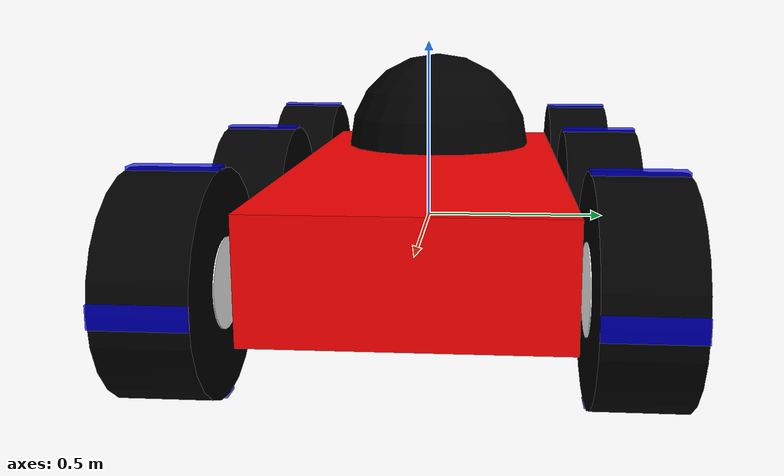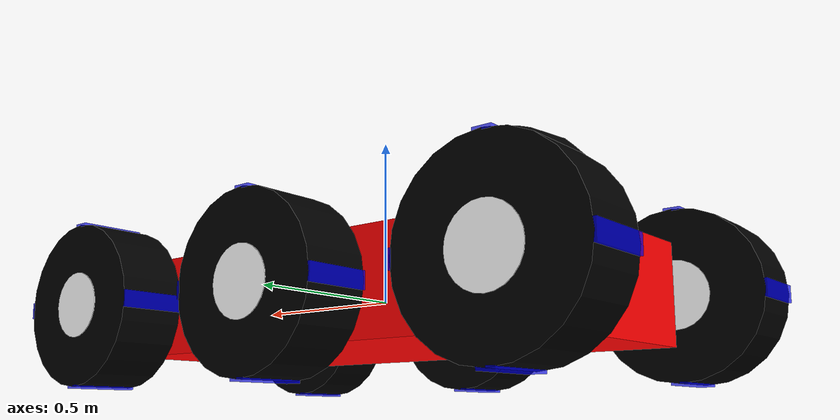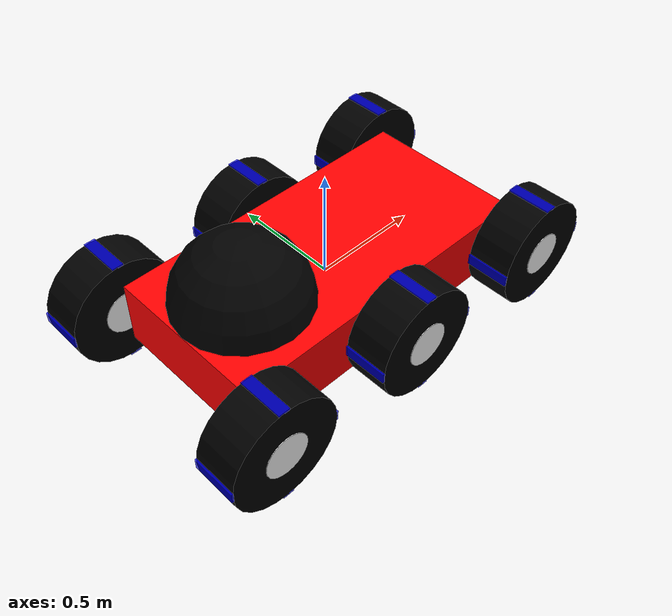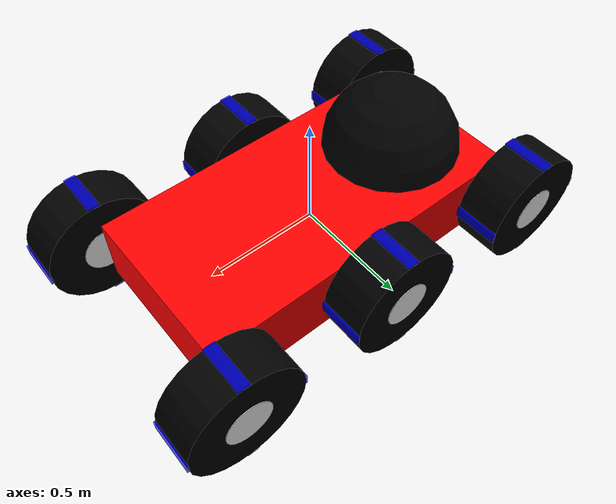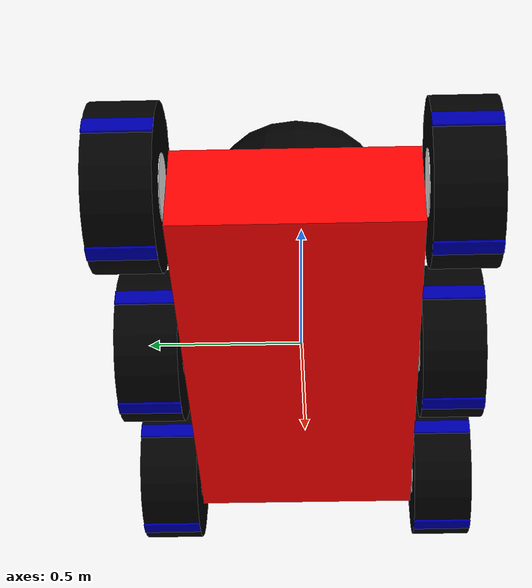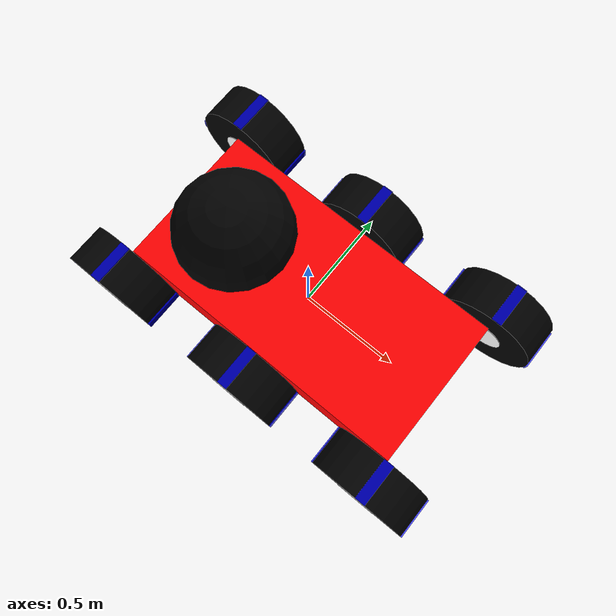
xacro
<robot xmlns:xacro="http://www.ros.org/wiki/xacro" name="my_robot2">
	<material name="red">
		<color rgba="1 0 0 1" />
	</material>
	<material name="black">
		<color rgba="0 0 0 1"/>
	</material>
	<material name="blue">
		<color rgba="0 0 1 0.7"/>
	</material>
	<material name="white">
		<color rgba="1 1 1 1"/>
	</material>

	<xacro:macro name="strip_xacro" params="w">
		<link name="strip${1+(w-1)*4}">
			<visual>
				<geometry>
					<box size="0.2 0.05 0.01"/>
				</geometry>
				<origin rpy="1.57 1.57 0" xyz="0 0 0"/>
				<material name="blue"/>
			</visual>
		</link>
		<link name="strip${2+(w-1)*4}">
			<visual>
				<geometry>
					<box size="0.2 0.05 0.01"/>
				</geometry>
				<origin rpy="1.57 1.57 0" xyz="0 0 0"/>
				<material name="blue"/>
			</visual>
		</link>
		<link name="strip${3+(w-1)*4}">
			<visual>
				<geometry>
					<box size="0.2 0.05 0.01"/>
				</geometry>
				<origin rpy="0 1.57 0" xyz="0 0 0"/>
				<material name="blue"/>
			</visual>
		</link>
		<link name="strip${4+(w-1)*4}">
			<visual>
				<geometry>
					<box size="0.2 0.05 0.01"/>
				</geometry>
				<origin rpy="0 1.57 0" xyz="0 0 0"/>
				<material name="blue"/>
			</visual>
		</link>
	</xacro:macro>

	<xacro:macro name="strip_joints_xacro" params="w">
		<joint name="strip${1+(w-1)*4}_to_wheel${w}" type="fixed">
			<parent link="wheel${w}"/>
			<child link="strip${1+(w-1)*4}"/>
			<origin rpy="0 0 0" xyz="0 0.25 0"/>
			<limit effort="100" velocity="100"/>
		</joint>
		<joint name="strip${2+(w-1)*4}_to_wheel${w}" type="fixed">
			<parent link="wheel${w}"/>
			<child link="strip${2+(w-1)*4}"/>
			<origin rpy="0 0 0" xyz="0 -0.25 0"/>
			<limit effort="100" velocity="100"/>
		</joint>
		<joint name="strip${3+(w-1)*4}_to_wheel${w}" type="fixed">
			<parent link="wheel${w}"/>
			<child link="strip${3+(w-1)*4}"/>
			<origin rpy="0 0 0" xyz="0.25 0 0"/>
			<limit effort="100" velocity="100"/>
		</joint>
		<joint name="strip${4+(w-1)*4}_to_wheel${w}" type="fixed">
			<parent link="wheel${w}"/>
			<child link="strip${4+(w-1)*4}"/>
			<origin rpy="0 0 0" xyz="-0.25 0 0"/>
			<limit effort="100" velocity="100"/>
		</joint>
	</xacro:macro>

	<xacro:macro name="rims" params="w">
		<link name="rim${w}">
			<visual>
				<geometry>
					<cylinder length="0.205" radius="0.1"/>
				</geometry>
				<material name="white"/>
			</visual>
		</link>
		<joint name="rim${w}_to_wheel${w}" type="fixed">
			<parent link="wheel${w}"/>
			<child link="rim${w}"/>
			<origin rpy="0 0 0" xyz="0 0 0"/>
		</joint>
	</xacro:macro>

	<link name="base_link">
		<visual>
			<geometry>
				<box size="1.5 0.75 0.3" />
			</geometry>
			<material name="red" />
		</visual>
	</link>

	<link name="head_link">
		<visual>
			<geometry>
				<sphere radius="0.3"/>
			</geometry>
			<material name="black"/>
		</visual>
	</link>
	<joint name="head_to_base" type="fixed">
		<parent link="base_link"/>
		<child link="head_link"/>
		<origin rpy="0 0 0" xyz="-0.45 0 0.15"/>
	</joint>

	<link name="wheel1">
		<visual>
			<geometry>
				<cylinder length="0.20" radius="0.25"/>
			</geometry>
			<material name="black"/>
		</visual>
	</link>
	<joint name="base_to_wheel1" type="continuous">
		<axis xyz="0 0 1"/>
		<origin rpy="1.57 0 0" xyz="-0.75 -0.485 0"/>
		<parent link="base_link"/>
		<child link="wheel1"/>
		<limit effort="100" velocity="100"/>
	</joint>
	<xacro:strip_xacro w="1"/>
	<xacro:strip_joints_xacro w="1"/>
	<xacro:rims w="1"/>

	<link name="wheel2">
		<visual>
			<geometry>
				<cylinder length="0.20" radius="0.25"/>
			</geometry>
			<material name="black"/>
		</visual>
	</link>
	<joint name="base_to_wheel2" type="continuous">
		<axis xyz="0 0 1"/>
		<origin rpy="1.57 0 0" xyz="0 -0.485 0"/>
		<parent link="base_link"/>
		<child link="wheel2"/>
		<limit effort="100" velocity="100"/>
	</joint>
	<xacro:strip_xacro w="2"/>
	<xacro:strip_joints_xacro w="2"/>
	<xacro:rims w="2"/>

	<link name="wheel3">
		<visual>
			<geometry>
				<cylinder length="0.20" radius="0.25"/>
			</geometry>
			<material name="black"/>
		</visual>
	</link>
	<joint name="base_to_wheel3" type="continuous">
		<axis xyz="0 0 1"/>
		<origin rpy="1.57 0 0" xyz="0.75 -0.485 0"/>
		<parent link="base_link"/>
		<child link="wheel3"/>
		<limit effort="100" velocity="100"/>
	</joint>
	<xacro:strip_xacro w="3"/>
	<xacro:strip_joints_xacro w="3"/>
	<xacro:rims w="3"/>

	<link name="wheel4">
		<visual>
			<geometry>
				<cylinder length="0.20" radius="0.25"/>
			</geometry>
			<material name="black"/>
		</visual>
	</link>
	<joint name="base_to_wheel4" type="continuous">
		<axis xyz="0 0 1"/>
		<origin rpy="1.57 0 0" xyz="0.75 0.485 0"/>
		<parent link="base_link"/>
		<child link="wheel4"/>
		<limit effort="100" velocity="100"/>
	</joint>
	<xacro:strip_xacro w="4"/>
	<xacro:strip_joints_xacro w="4"/>
	<xacro:rims w="4"/>

	<link name="wheel5">
		<visual>
			<geometry>
				<cylinder length="0.20" radius="0.25"/>
			</geometry>
			<material name="black"/>
		</visual>
	</link>
	<joint name="base_to_wheel5" type="continuous">
		<axis xyz="0 0 1"/>
		<origin rpy="1.57 0 0" xyz="0 0.485 0"/>
		<parent link="base_link"/>
		<child link="wheel5"/>
		<limit effort="100" velocity="100"/>
	</joint>
	<xacro:strip_xacro w="5"/>
	<xacro:strip_joints_xacro w="5"/>
	<xacro:rims w="5"/>

	<link name="wheel6">
		<visual>
			<geometry>
				<cylinder length="0.20" radius="0.25"/>
			</geometry>
			<material name="black"/>
		</visual>
	</link>
	<joint name="base_to_wheel6" type="continuous">
		<axis xyz="0 0 1"/>
		<origin rpy="1.57 0 0" xyz="-0.75 0.485 0"/>
		<parent link="base_link"/>
		<child link="wheel6"/>
		<limit effort="100" velocity="100"/>
	</joint>
	<xacro:strip_xacro w="6"/>
	<xacro:strip_joints_xacro w="6"/>
	<xacro:rims w="6"/>

</robot>
